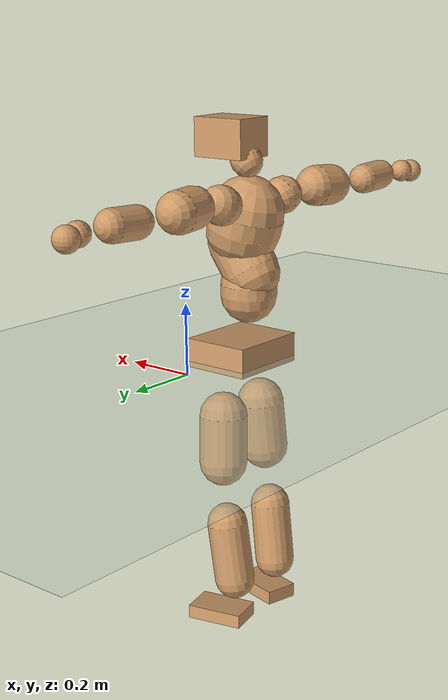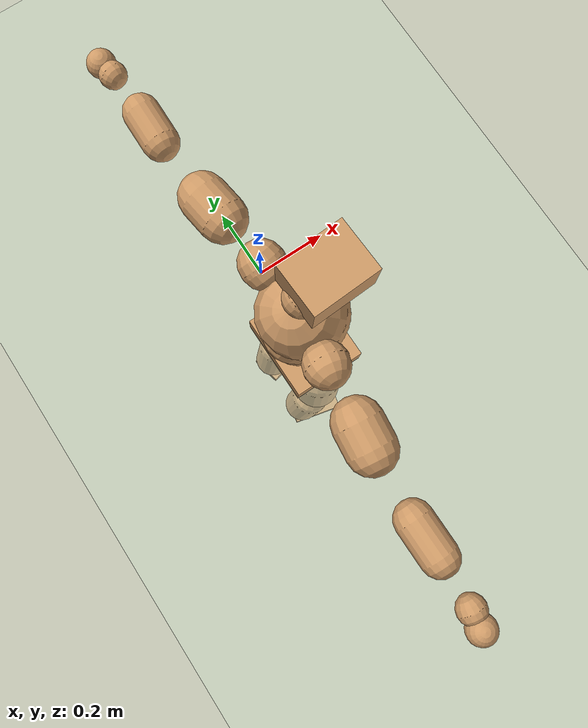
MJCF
<mujoco model="humanoid">
  <compiler coordinate="local" angle="radian"/>
  <default>
    <joint damping="0.0" armature="0.01" stiffness="0.0" limited="true"/>
    <geom conaffinity="1" condim="3" contype="7" margin="0.001" rgba="0.8 0.6 .4 1"/>
  </default>
  <asset>
    <texture type="skybox" builtin="gradient" rgb1=".4 .5 .6" rgb2="0 0 0" width="100" height="100"/>
    <texture builtin="flat" height="1278" mark="cross" markrgb="1 1 1" name="texgeom" random="0.01" rgb1="0.8 0.6 0.4" rgb2="0.8 0.6 0.4" type="cube" width="127"/>
    <texture builtin="checker" height="100" name="texplane" rgb1="0 0 0" rgb2="0.8 0.8 0.8" type="2d" width="100"/>
    <material name="MatPlane" reflectance="0.5" shininess="1" specular="1" texrepeat="60 60" texture="texplane"/>
    <material name="geom" texture="texgeom" texuniform="true"/>
  </asset>
  <worldbody>
    <light cutoff="100" diffuse="1 1 1" dir="-0 0 -1.3" directional="true" exponent="1" pos="0 0 1.3" specular=".1 .1 .1"/>
    <geom conaffinity="1" condim="3" name="floor" pos="0 0 0" rgba="0.8 0.9 0.8 1" size="100 100 .2" type="plane" material="MatPlane"/>
    <body name="Pelvis" pos="-0.0008 -0.2269 0.0359">
      <freejoint name="Pelvis"/>
      <geom type="box" contype="1" conaffinity="1" density="5359.375079" pos="-0.0058 -0.0000 -0.0128" size="0.0998 0.1182 0.0418" quat="1.0000 0.0000 0.0000 0.0023" name="Pelvis"/>
      <body name="L_Hip" pos="-0.0037 0.0793 -0.0917">
        <joint name="L_Hip_x" type="hinge" pos="0 0 0" axis="1 0 0" stiffness="1600" damping="160" armature="0.02" range="-180.0000 180.0000"/>
        <joint name="L_Hip_y" type="hinge" pos="0 0 0" axis="0 1 0" stiffness="1600" damping="160" armature="0.02" range="-180.0000 180.0000"/>
        <joint name="L_Hip_z" type="hinge" pos="0 0 0" axis="0 0 1" stiffness="1600" damping="160" armature="0.02" range="-180.0000 180.0000"/>
        <geom type="capsule" contype="1" conaffinity="1" density="2040.816327" size="0.0685" fromto="-0.0040 0.0065 -0.0982 -0.0096 0.0157 -0.2350" name="L_Hip"/>
        <body name="L_Knee" pos="-0.0136 0.0222 -0.3332">
          <joint name="L_Knee_x" type="hinge" pos="0 0 0" axis="1 0 0" stiffness="1600" damping="160" armature="0.02" range="-180.0000 180.0000"/>
          <joint name="L_Knee_y" type="hinge" pos="0 0 0" axis="0 1 0" stiffness="1600" damping="160" armature="0.02" range="-180.0000 180.0000"/>
          <joint name="L_Knee_z" type="hinge" pos="0 0 0" axis="0 0 1" stiffness="1600" damping="160" armature="0.02" range="-180.0000 180.0000"/>
          <geom type="capsule" contype="1" conaffinity="1" density="1234.567901" size="0.0581" fromto="-0.0117 -0.0026 -0.0873 -0.0349 -0.0076 -0.2611" name="L_Knee"/>
          <body name="L_Ankle" pos="-0.0465 -0.0102 -0.3484">
            <joint name="L_Ankle_x" type="hinge" pos="0 0 0" axis="1 0 0" stiffness="1600" damping="160" armature="0.02" range="-180.0000 180.0000"/>
            <joint name="L_Ankle_y" type="hinge" pos="0 0 0" axis="0 1 0" stiffness="1600" damping="160" armature="0.02" range="-180.0000 180.0000"/>
            <joint name="L_Ankle_z" type="hinge" pos="0 0 0" axis="0 0 1" stiffness="1600" damping="160" armature="0.02" range="-180.0000 180.0000"/>
            <geom type="box" contype="1" conaffinity="1" density="1000.000047" pos="0.0560 0.0133 -0.0258" size="0.0827 0.0503 0.0198" quat="0.9932 0.0000 0.0000 0.1160" name="L_Ankle"/>
            <body name="L_Toe" pos="0.1119 0.0265 -0.0517">
              <joint name="L_Toe_x" type="hinge" pos="0 0 0" axis="1 0 0" stiffness="1000" damping="100" armature="0.02" range="-180.0000 180.0000"/>
              <joint name="L_Toe_y" type="hinge" pos="0 0 0" axis="0 1 0" stiffness="1000" damping="100" armature="0.02" range="-180.0000 180.0000"/>
              <joint name="L_Toe_z" type="hinge" pos="0 0 0" axis="0 0 1" stiffness="1000" damping="100" armature="0.02" range="-180.0000 180.0000"/>
              <geom type="box" contype="1" conaffinity="1" density="7951340.427899" pos="0.0000 0.0000 0.0262" size="0.001 0.0025 0.001" quat="0.9925 0.0000 0.0000 0.1223" name="L_Toe"/>
            </body>
          </body>
        </body>
      </body>
      <body name="R_Hip" pos="-0.0017 -0.0767 -0.0914">
        <joint name="R_Hip_x" type="hinge" pos="0 0 0" axis="1 0 0" stiffness="1600" damping="160" armature="0.02" range="-180.0000 180.0000"/>
        <joint name="R_Hip_y" type="hinge" pos="0 0 0" axis="0 1 0" stiffness="1600" damping="160" armature="0.02" range="-180.0000 180.0000"/>
        <joint name="R_Hip_z" type="hinge" pos="0 0 0" axis="0 0 1" stiffness="1600" damping="160" armature="0.02" range="-180.0000 180.0000"/>
        <geom type="capsule" contype="1" conaffinity="1" density="2040.816327" size="0.0679" fromto="-0.0047 -0.0080 -0.0975 -0.0115 -0.0197 -0.2402" name="R_Hip"/>
        <body name="R_Knee" pos="-0.0162 -0.0277 -0.3377">
          <joint name="R_Knee_x" type="hinge" pos="0 0 0" axis="1 0 0" stiffness="1600" damping="160" armature="0.02" range="-180.0000 180.0000"/>
          <joint name="R_Knee_y" type="hinge" pos="0 0 0" axis="0 1 0" stiffness="1600" damping="160" armature="0.02" range="-180.0000 180.0000"/>
          <joint name="R_Knee_z" type="hinge" pos="0 0 0" axis="0 0 1" stiffness="1600" damping="160" armature="0.02" range="-180.0000 180.0000"/>
          <geom type="capsule" contype="1" conaffinity="1" density="1234.567901" size="0.058" fromto="-0.0116 0.0029 -0.0872 -0.0348 0.0086 -0.2615" name="R_Knee"/>
          <body name="R_Ankle" pos="-0.0464 0.0115 -0.3488">
            <joint name="R_Ankle_x" type="hinge" pos="0 0 0" axis="1 0 0" stiffness="1600" damping="160" armature="0.02" range="-180.0000 180.0000"/>
            <joint name="R_Ankle_y" type="hinge" pos="0 0 0" axis="0 1 0" stiffness="1600" damping="160" armature="0.02" range="-180.0000 180.0000"/>
            <joint name="R_Ankle_z" type="hinge" pos="0 0 0" axis="0 0 1" stiffness="1600" damping="160" armature="0.02" range="-180.0000 180.0000"/>
            <geom type="box" contype="1" conaffinity="1" density="999.999963" pos="0.0581 -0.0134 -0.0218" size="0.0822 0.0484 0.0202" quat="0.9935 0.0000 0.0000 -0.1134" name="R_Ankle"/>
            <body name="R_Toe" pos="0.1162 -0.0269 -0.0436">
              <joint name="R_Toe_x" type="hinge" pos="0 0 0" axis="1 0 0" stiffness="1000" damping="100" armature="0.02" range="-180.0000 180.0000"/>
              <joint name="R_Toe_y" type="hinge" pos="0 0 0" axis="0 1 0" stiffness="1000" damping="100" armature="0.02" range="-180.0000 180.0000"/>
              <joint name="R_Toe_z" type="hinge" pos="0 0 0" axis="0 0 1" stiffness="1000" damping="100" armature="0.02" range="-180.0000 180.0000"/>
              <geom type="box" contype="1" conaffinity="1" density="7748121.674709" pos="0.0000 0.0000 0.0237" size="0.001 0.0024 0.0011" quat="0.9946 0.0000 0.0000 -0.1036" name="R_Toe"/>
            </body>
          </body>
        </body>
      </body>
      <body name="Torso" pos="-0.0297 -0.0028 0.1064">
        <joint name="Torso_x" type="hinge" pos="0 0 0" axis="1 0 0" stiffness="2000" damping="200" armature="0.02" range="-180.0000 180.0000"/>
        <joint name="Torso_y" type="hinge" pos="0 0 0" axis="0 1 0" stiffness="2000" damping="200" armature="0.02" range="-180.0000 180.0000"/>
        <joint name="Torso_z" type="hinge" pos="0 0 0" axis="0 0 1" stiffness="2000" damping="200" armature="0.02" range="-180.0000 180.0000"/>
        <geom type="capsule" contype="1" conaffinity="1" density="2040.816327" size="0.0801" fromto="-0.0034 0.0024 0.0800 -0.0020 0.0014 0.0475" name="Torso"/>
        <body name="Spine" pos="-0.0055 0.0038 0.1275">
          <joint name="Spine_x" type="hinge" pos="0 0 0" axis="1 0 0" stiffness="2000" damping="200" armature="0.02" range="-180.0000 180.0000"/>
          <joint name="Spine_y" type="hinge" pos="0 0 0" axis="0 1 0" stiffness="2000" damping="200" armature="0.02" range="-180.0000 180.0000"/>
          <joint name="Spine_z" type="hinge" pos="0 0 0" axis="0 0 1" stiffness="2000" damping="200" armature="0.02" range="-180.0000 180.0000"/>
          <geom type="capsule" contype="1" conaffinity="1" density="2040.816327" size="0.0798" fromto="0.0452 0.0024 0.0657 -0.0101 -0.0005 -0.0146" name="Spine"/>
          <body name="Chest" pos="0.0351 0.0019 0.0511">
            <joint name="Chest_x" type="hinge" pos="0 0 0" axis="1 0 0" stiffness="2000" damping="200" armature="0.02" range="-180.0000 180.0000"/>
            <joint name="Chest_y" type="hinge" pos="0 0 0" axis="0 1 0" stiffness="2000" damping="200" armature="0.02" range="-180.0000 180.0000"/>
            <joint name="Chest_z" type="hinge" pos="0 0 0" axis="0 0 1" stiffness="2000" damping="200" armature="0.02" range="-180.0000 180.0000"/>
            <geom type="capsule" contype="1" conaffinity="1" density="2040.816327" size="0.1045" fromto="-0.0308 -0.0002 0.0998 -0.0160 -0.0001 0.0519" name="Chest"/>
            <body name="Neck" pos="-0.0546 0 0.213">
              <joint name="Neck_x" type="hinge" pos="0 0 0" axis="1 0 0" stiffness="1000" damping="100" armature="0.02" range="-180.0000 180.0000"/>
              <joint name="Neck_y" type="hinge" pos="0 0 0" axis="0 1 0" stiffness="1000" damping="100" armature="0.02" range="-180.0000 180.0000"/>
              <joint name="Neck_z" type="hinge" pos="0 0 0" axis="0 0 1" stiffness="1000" damping="100" armature="0.02" range="-180.0000 180.0000"/>
              <geom type="capsule" contype="1" conaffinity="1" density="1000" size="0.0437" fromto="0.0285 0.0003 0.0332 0.0232 0.0003 0.0271" name="Neck"/>
              <body name="Head" pos="0.0517 0.0006 0.0603">
                <joint name="Head_x" type="hinge" pos="0 0 0" axis="1 0 0" stiffness="1000" damping="100" armature="0.02" range="-180.0000 180.0000"/>
                <joint name="Head_y" type="hinge" pos="0 0 0" axis="0 1 0" stiffness="1000" damping="100" armature="0.02" range="-180.0000 180.0000"/>
                <joint name="Head_z" type="hinge" pos="0 0 0" axis="0 0 1" stiffness="1000" damping="100" armature="0.02" range="-180.0000 180.0000"/>
                <geom type="box" contype="1" conaffinity="1" density="2249.999919" pos="0.0268 0.0013 0.0312" size="0.079 0.0626 0.0544" quat="0.9997 0.0000 0.0000 0.0243" name="Head"/>
              </body>
            </body>
            <body name="L_Thorax" pos="-0.0399 0.0811 0.1223">
              <joint name="L_Thorax_x" type="hinge" pos="0 0 0" axis="1 0 0" stiffness="1000" damping="100" armature="0.02" range="-180.0000 180.0000"/>
              <joint name="L_Thorax_y" type="hinge" pos="0 0 0" axis="0 1 0" stiffness="1000" damping="100" armature="0.02" range="-180.0000 180.0000"/>
              <joint name="L_Thorax_z" type="hinge" pos="0 0 0" axis="0 0 1" stiffness="1000" damping="100" armature="0.02" range="-180.0000 180.0000"/>
              <geom type="capsule" contype="1" conaffinity="1" density="1000" size="0.0545" fromto="-0.0064 0.0512 0.0175 -0.0051 0.0407 0.0140" name="L_Thorax"/>
              <body name="L_Shoulder" pos="-0.0116 0.0919 0.0315">
                <joint name="L_Shoulder_x" type="hinge" pos="0 0 0" axis="1 0 0" stiffness="1000" damping="100" armature="0.02" range="-720.0000 720.0000"/>
                <joint name="L_Shoulder_y" type="hinge" pos="0 0 0" axis="0 1 0" stiffness="1000" damping="100" armature="0.02" range="-720.0000 720.0000"/>
                <joint name="L_Shoulder_z" type="hinge" pos="0 0 0" axis="0 0 1" stiffness="1000" damping="100" armature="0.02" range="-720.0000 720.0000"/>
                <geom type="capsule" contype="1" conaffinity="1" density="1000" size="0.0578" fromto="-0.0115 0.0870 -0.0033 -0.0204 0.1538 -0.0059" name="L_Shoulder"/>
                <body name="L_Elbow" pos="-0.0319 0.2407 -0.0093">
                  <joint name="L_Elbow_x" type="hinge" pos="0 0 0" axis="1 0 0" stiffness="1000" damping="100" armature="0.02" range="-720.0000 720.0000"/>
                  <joint name="L_Elbow_y" type="hinge" pos="0 0 0" axis="0 1 0" stiffness="1000" damping="100" armature="0.02" range="-720.0000 720.0000"/>
                  <joint name="L_Elbow_z" type="hinge" pos="0 0 0" axis="0 0 1" stiffness="1000" damping="100" armature="0.02" range="-720.0000 720.0000"/>
                  <geom type="capsule" contype="1" conaffinity="1" density="1000" size="0.0437" fromto="0.0009 0.0736 0.0026 0.0019 0.1572 0.0056" name="L_Elbow"/>
                  <body name="L_Wrist" pos="0.0028 0.2308 0.0082">
                    <joint name="L_Wrist_x" type="hinge" pos="0 0 0" axis="1 0 0" stiffness="600" damping="60" armature="0.02" range="-180.0000 180.0000"/>
                    <joint name="L_Wrist_y" type="hinge" pos="0 0 0" axis="0 1 0" stiffness="600" damping="60" armature="0.02" range="-180.0000 180.0000"/>
                    <joint name="L_Wrist_z" type="hinge" pos="0 0 0" axis="0 0 1" stiffness="600" damping="60" armature="0.02" range="-180.0000 180.0000"/>
                    <geom type="capsule" contype="1" conaffinity="1" density="1000" size="0.0324" fromto="-0.0066 0.0412 -0.0049 -0.0069 0.0431 -0.0051" name="L_Wrist"/>
                    <body name="L_Hand" pos="-0.0136 0.0843 -0.01">
                      <joint name="L_Hand_x" type="hinge" pos="0 0 0" axis="1 0 0" stiffness="600" damping="60" armature="0.02" range="-180.0000 180.0000"/>
                      <joint name="L_Hand_y" type="hinge" pos="0 0 0" axis="0 1 0" stiffness="600" damping="60" armature="0.02" range="-180.0000 180.0000"/>
                      <joint name="L_Hand_z" type="hinge" pos="0 0 0" axis="0 0 1" stiffness="600" damping="60" armature="0.02" range="-180.0000 180.0000"/>
                      <geom type="sphere" contype="1" conaffinity="1" density="1000" size="0.0342" pos="0.0000 0.0000 0.0000" name="L_Hand"/>
                    </body>
                  </body>
                </body>
              </body>
            </body>
            <body name="R_Thorax" pos="-0.046 -0.082 0.1198">
              <joint name="R_Thorax_x" type="hinge" pos="0 0 0" axis="1 0 0" stiffness="1000" damping="100" armature="0.02" range="-180.0000 180.0000"/>
              <joint name="R_Thorax_y" type="hinge" pos="0 0 0" axis="0 1 0" stiffness="1000" damping="100" armature="0.02" range="-180.0000 180.0000"/>
              <joint name="R_Thorax_z" type="hinge" pos="0 0 0" axis="0 0 1" stiffness="1000" damping="100" armature="0.02" range="-180.0000 180.0000"/>
              <geom type="capsule" contype="1" conaffinity="1" density="1000" size="0.0535" fromto="-0.0069 -0.0504 0.0164 -0.0063 -0.0459 0.0149" name="R_Thorax"/>
              <body name="R_Shoulder" pos="-0.0132 -0.0964 0.0313">
                <joint name="R_Shoulder_x" type="hinge" pos="0 0 0" axis="1 0 0" stiffness="1000" damping="100" armature="0.02" range="-720.0000 720.0000"/>
                <joint name="R_Shoulder_y" type="hinge" pos="0 0 0" axis="0 1 0" stiffness="1000" damping="100" armature="0.02" range="-720.0000 720.0000"/>
                <joint name="R_Shoulder_z" type="hinge" pos="0 0 0" axis="0 0 1" stiffness="1000" damping="100" armature="0.02" range="-720.0000 720.0000"/>
                <geom type="capsule" contype="1" conaffinity="1" density="1000" size="0.0586" fromto="-0.0091 -0.0881 -0.0039 -0.0155 -0.1497 -0.0067" name="R_Shoulder"/>
                <body name="R_Elbow" pos="-0.0246 -0.2378 -0.0106">
                  <joint name="R_Elbow_x" type="hinge" pos="0 0 0" axis="1 0 0" stiffness="1000" damping="100" armature="0.02" range="-720.0000 720.0000"/>
                  <joint name="R_Elbow_y" type="hinge" pos="0 0 0" axis="0 1 0" stiffness="1000" damping="100" armature="0.02" range="-720.0000 720.0000"/>
                  <joint name="R_Elbow_z" type="hinge" pos="0 0 0" axis="0 0 1" stiffness="1000" damping="100" armature="0.02" range="-720.0000 720.0000"/>
                  <geom type="capsule" contype="1" conaffinity="1" density="1000" size="0.0437" fromto="0.0004 -0.0736 0.0030 0.0009 -0.1618 0.0066" name="R_Elbow"/>
                  <body name="R_Wrist" pos="0.0013 -0.2354 0.0096">
                    <joint name="R_Wrist_x" type="hinge" pos="0 0 0" axis="1 0 0" stiffness="600" damping="60" armature="0.02" range="-180.0000 180.0000"/>
                    <joint name="R_Wrist_y" type="hinge" pos="0 0 0" axis="0 1 0" stiffness="600" damping="60" armature="0.02" range="-180.0000 180.0000"/>
                    <joint name="R_Wrist_z" type="hinge" pos="0 0 0" axis="0 0 1" stiffness="600" damping="60" armature="0.02" range="-180.0000 180.0000"/>
                    <geom type="capsule" contype="1" conaffinity="1" density="1000" size="0.033" fromto="-0.0054 -0.0411 -0.0037 -0.0056 -0.0431 -0.0039" name="R_Wrist"/>
                    <body name="R_Hand" pos="-0.011 -0.0842 -0.0076">
                      <joint name="R_Hand_x" type="hinge" pos="0 0 0" axis="1 0 0" stiffness="600" damping="60" armature="0.02" range="-180.0000 180.0000"/>
                      <joint name="R_Hand_y" type="hinge" pos="0 0 0" axis="0 1 0" stiffness="600" damping="60" armature="0.02" range="-180.0000 180.0000"/>
                      <joint name="R_Hand_z" type="hinge" pos="0 0 0" axis="0 0 1" stiffness="600" damping="60" armature="0.02" range="-180.0000 180.0000"/>
                      <geom type="sphere" contype="1" conaffinity="1" density="1000" size="0.0341" pos="0.0000 0.0000 0.0000" name="R_Hand"/>
                    </body>
                  </body>
                </body>
              </body>
            </body>
          </body>
        </body>
      </body>
    </body>
  </worldbody>
  <actuator>
    <motor name="L_Hip_x" joint="L_Hip_x" gear="500"/>
    <motor name="L_Hip_y" joint="L_Hip_y" gear="500"/>
    <motor name="L_Hip_z" joint="L_Hip_z" gear="500"/>
    <motor name="L_Knee_x" joint="L_Knee_x" gear="500"/>
    <motor name="L_Knee_y" joint="L_Knee_y" gear="500"/>
    <motor name="L_Knee_z" joint="L_Knee_z" gear="500"/>
    <motor name="L_Ankle_x" joint="L_Ankle_x" gear="500"/>
    <motor name="L_Ankle_y" joint="L_Ankle_y" gear="500"/>
    <motor name="L_Ankle_z" joint="L_Ankle_z" gear="500"/>
    <motor name="L_Toe_x" joint="L_Toe_x" gear="500"/>
    <motor name="L_Toe_y" joint="L_Toe_y" gear="500"/>
    <motor name="L_Toe_z" joint="L_Toe_z" gear="500"/>
    <motor name="R_Hip_x" joint="R_Hip_x" gear="500"/>
    <motor name="R_Hip_y" joint="R_Hip_y" gear="500"/>
    <motor name="R_Hip_z" joint="R_Hip_z" gear="500"/>
    <motor name="R_Knee_x" joint="R_Knee_x" gear="500"/>
    <motor name="R_Knee_y" joint="R_Knee_y" gear="500"/>
    <motor name="R_Knee_z" joint="R_Knee_z" gear="500"/>
    <motor name="R_Ankle_x" joint="R_Ankle_x" gear="500"/>
    <motor name="R_Ankle_y" joint="R_Ankle_y" gear="500"/>
    <motor name="R_Ankle_z" joint="R_Ankle_z" gear="500"/>
    <motor name="R_Toe_x" joint="R_Toe_x" gear="500"/>
    <motor name="R_Toe_y" joint="R_Toe_y" gear="500"/>
    <motor name="R_Toe_z" joint="R_Toe_z" gear="500"/>
    <motor name="Torso_x" joint="Torso_x" gear="500"/>
    <motor name="Torso_y" joint="Torso_y" gear="500"/>
    <motor name="Torso_z" joint="Torso_z" gear="500"/>
    <motor name="Spine_x" joint="Spine_x" gear="500"/>
    <motor name="Spine_y" joint="Spine_y" gear="500"/>
    <motor name="Spine_z" joint="Spine_z" gear="500"/>
    <motor name="Chest_x" joint="Chest_x" gear="500"/>
    <motor name="Chest_y" joint="Chest_y" gear="500"/>
    <motor name="Chest_z" joint="Chest_z" gear="500"/>
    <motor name="Neck_x" joint="Neck_x" gear="500"/>
    <motor name="Neck_y" joint="Neck_y" gear="500"/>
    <motor name="Neck_z" joint="Neck_z" gear="500"/>
    <motor name="Head_x" joint="Head_x" gear="500"/>
    <motor name="Head_y" joint="Head_y" gear="500"/>
    <motor name="Head_z" joint="Head_z" gear="500"/>
    <motor name="L_Thorax_x" joint="L_Thorax_x" gear="500"/>
    <motor name="L_Thorax_y" joint="L_Thorax_y" gear="500"/>
    <motor name="L_Thorax_z" joint="L_Thorax_z" gear="500"/>
    <motor name="L_Shoulder_x" joint="L_Shoulder_x" gear="500"/>
    <motor name="L_Shoulder_y" joint="L_Shoulder_y" gear="500"/>
    <motor name="L_Shoulder_z" joint="L_Shoulder_z" gear="500"/>
    <motor name="L_Elbow_x" joint="L_Elbow_x" gear="500"/>
    <motor name="L_Elbow_y" joint="L_Elbow_y" gear="500"/>
    <motor name="L_Elbow_z" joint="L_Elbow_z" gear="500"/>
    <motor name="L_Wrist_x" joint="L_Wrist_x" gear="500"/>
    <motor name="L_Wrist_y" joint="L_Wrist_y" gear="500"/>
    <motor name="L_Wrist_z" joint="L_Wrist_z" gear="500"/>
    <motor name="L_Hand_x" joint="L_Hand_x" gear="500"/>
    <motor name="L_Hand_y" joint="L_Hand_y" gear="500"/>
    <motor name="L_Hand_z" joint="L_Hand_z" gear="500"/>
    <motor name="R_Thorax_x" joint="R_Thorax_x" gear="500"/>
    <motor name="R_Thorax_y" joint="R_Thorax_y" gear="500"/>
    <motor name="R_Thorax_z" joint="R_Thorax_z" gear="500"/>
    <motor name="R_Shoulder_x" joint="R_Shoulder_x" gear="500"/>
    <motor name="R_Shoulder_y" joint="R_Shoulder_y" gear="500"/>
    <motor name="R_Shoulder_z" joint="R_Shoulder_z" gear="500"/>
    <motor name="R_Elbow_x" joint="R_Elbow_x" gear="500"/>
    <motor name="R_Elbow_y" joint="R_Elbow_y" gear="500"/>
    <motor name="R_Elbow_z" joint="R_Elbow_z" gear="500"/>
    <motor name="R_Wrist_x" joint="R_Wrist_x" gear="500"/>
    <motor name="R_Wrist_y" joint="R_Wrist_y" gear="500"/>
    <motor name="R_Wrist_z" joint="R_Wrist_z" gear="500"/>
    <motor name="R_Hand_x" joint="R_Hand_x" gear="500"/>
    <motor name="R_Hand_y" joint="R_Hand_y" gear="500"/>
    <motor name="R_Hand_z" joint="R_Hand_z" gear="500"/>
  </actuator>
  <contact>
    <exclude body1="Torso" body2="Chest"/>
    <exclude body1="Head" body2="Chest"/>
    <exclude body1="R_Knee" body2="R_Toe"/>
    <exclude body1="R_Knee" body2="L_Ankle"/>
    <exclude body1="R_Knee" body2="L_Toe"/>
    <exclude body1="L_Knee" body2="L_Toe"/>
    <exclude body1="L_Knee" body2="R_Ankle"/>
    <exclude body1="L_Knee" body2="R_Toe"/>
    <exclude body1="L_Shoulder" body2="Chest"/>
    <exclude body1="R_Shoulder" body2="Chest"/>
  </contact>
  <sensor/>
  <size njmax="700" nconmax="700"/>
</mujoco>
